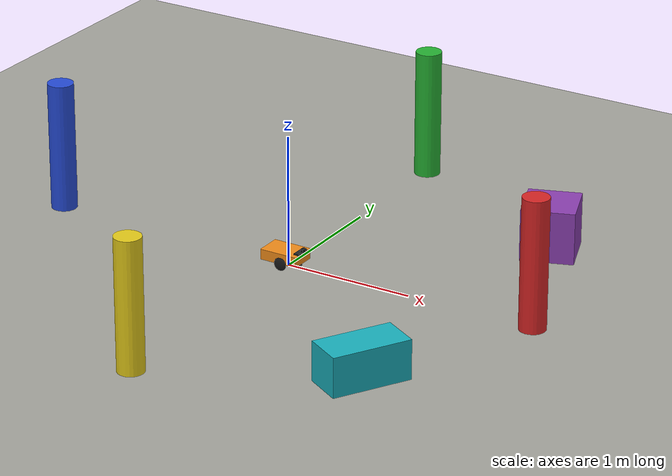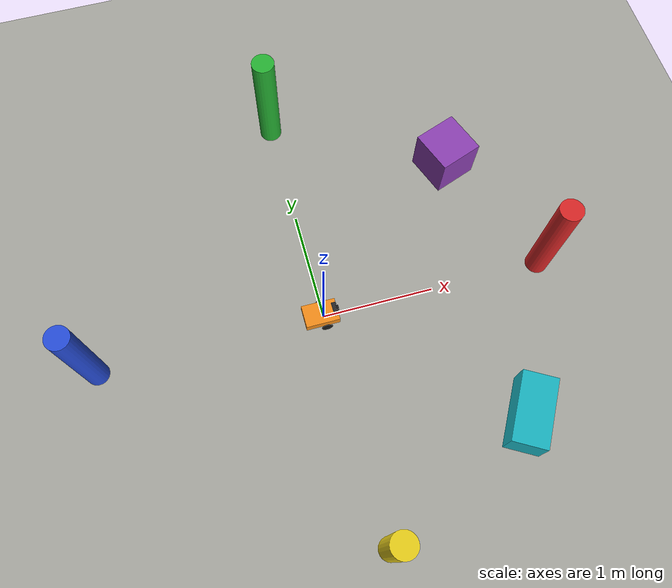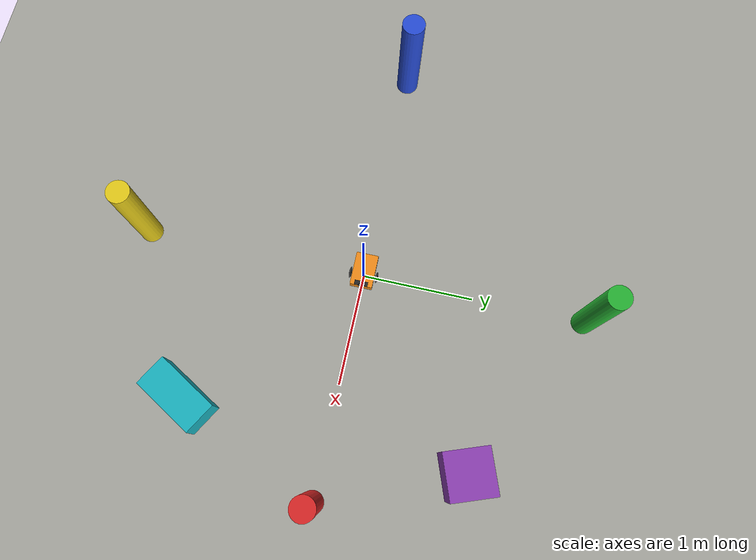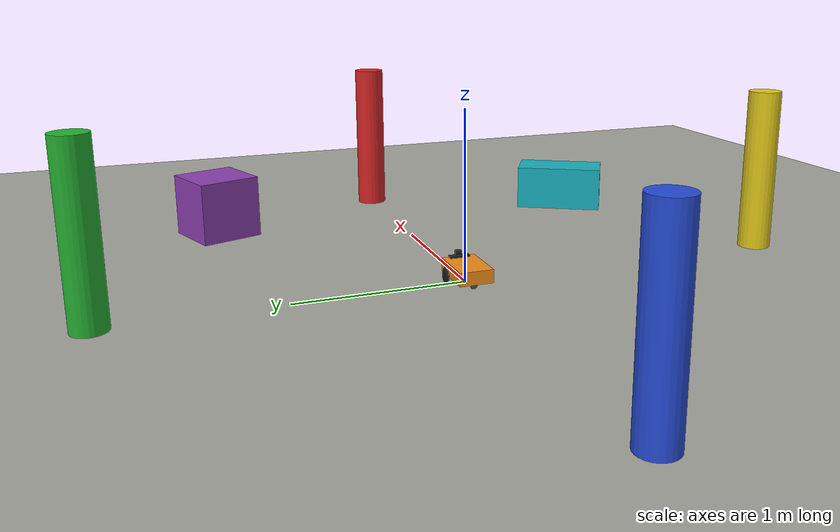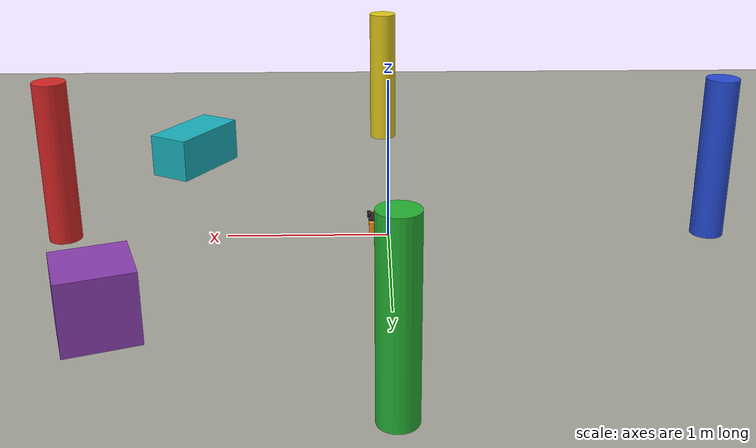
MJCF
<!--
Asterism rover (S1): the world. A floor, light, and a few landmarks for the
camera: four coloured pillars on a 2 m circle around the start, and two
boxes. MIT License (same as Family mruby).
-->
<mujoco model="asterism_rover_scene">
  <include file="rover.xml"/>

  <!-- Elliptic friction cones and a high impratio keep the wheels from
       creeping (MuJoCo's soft contacts otherwise let them slip a few %). -->
  <option timestep="0.002" integrator="implicitfast" cone="elliptic" impratio="10"/>

  <statistic center="0 0 0.3" extent="4"/>

  <visual>
    <headlight diffuse="0.5 0.5 0.5" ambient="0.25 0.25 0.25" specular="0 0 0"/>
    <rgba haze="0.15 0.25 0.35 1"/>
    <global azimuth="160" elevation="-25" offwidth="640" offheight="480"/>
    <quality shadowsize="2048"/>
  </visual>

  <asset>
    <texture type="skybox" builtin="gradient" rgb1="0.45 0.65 0.85" rgb2="0.1 0.1 0.15" width="512" height="3072"/>
    <texture type="2d" name="floor" builtin="checker" mark="edge" rgb1="0.75 0.75 0.72" rgb2="0.55 0.55 0.52"
             markrgb="0.3 0.3 0.3" width="300" height="300"/>
    <material name="floor" texture="floor" texuniform="true" texrepeat="2 2" reflectance="0.05"/>
  </asset>

  <worldbody>
    <light name="sun" pos="0 0 4" dir="-0.3 0.2 -1" directional="true" diffuse="0.7 0.7 0.7" castshadow="true"/>
    <geom name="floor" type="plane" size="0 0 0.05" material="floor" friction="1.0 0.005 0.0001"/>

    <!-- Landmarks: 1 m tall pillars, 2 m from the start -->
    <geom name="pillar_red" type="cylinder" size="0.1 0.5" pos="2 0 0.5" rgba="0.85 0.15 0.15 1"/>
    <geom name="pillar_green" type="cylinder" size="0.1 0.5" pos="0 2 0.5" rgba="0.15 0.7 0.2 1"/>
    <geom name="pillar_blue" type="cylinder" size="0.1 0.5" pos="-2 0 0.5" rgba="0.15 0.3 0.85 1"/>
    <geom name="pillar_yellow" type="cylinder" size="0.1 0.5" pos="0 -2 0.5" rgba="0.9 0.8 0.1 1"/>

    <!-- Boxes -->
    <geom name="box_purple" type="box" size="0.2 0.2 0.2" pos="1.5 1.2 0.2" euler="0 0 20" rgba="0.55 0.25 0.7 1"/>
    <geom name="box_cyan" type="box" size="0.15 0.3 0.15" pos="1.4 -1.3 0.15" euler="0 0 -30" rgba="0.1 0.7 0.75 1"/>
  </worldbody>
</mujoco>

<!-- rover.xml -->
<mujoco model="asterism_rover">
  <worldbody>
    <body name="base_link" pos="0 0 0.052">
      <!-- Ground truth: mujoco_ros2_control publishes this free joint's pose
           as nav_msgs/Odometry (odom_free_joint_name in rover.urdf). -->
      <freejoint name="floating_base_joint"/>

      <!-- Chassis: its centre (and the centre of mass) sits behind the axle,
           so the robot rests on the rear caster. -->
      <geom name="chassis" type="box" size="0.15 0.10 0.04" pos="-0.03 0 0.03"
            mass="2.0" rgba="0.95 0.55 0.10 1"/>
      <!-- Forward marker on top (cosmetic, no collision) -->
      <geom name="nose" type="box" size="0.02 0.06 0.005" pos="0.10 0 0.075"
            contype="0" conaffinity="0" mass="0" rgba="0.15 0.15 0.15 1"/>

      <!-- Rear caster: a frictionless ball (condim 1) touching the floor. -->
      <geom name="rear_caster" type="sphere" size="0.02" pos="-0.13 0 -0.03"
            condim="1" mass="0.05" rgba="0.3 0.3 0.3 1"/>
      <!-- Front stop: 5 mm above the floor, only touches when the robot
           pitches forward under hard braking. -->
      <geom name="front_stop" type="sphere" size="0.02" pos="0.09 0 -0.025"
            condim="1" mass="0.05" rgba="0.3 0.3 0.3 1"/>

      <!-- IMU (framequat + gyro + accelerometer on this site) -->
      <site name="imu_sensor" pos="0 0 0.05" size="0.01" rgba="0 1 0 0.5"/>

      <!-- Front camera, looking along +x. A MuJoCo camera looks along its
           -z axis with +y up: xyaxes gives x = -y_body, y = +z_body. -->
      <body name="camera_body" pos="0.12 0 0.09">
        <geom name="camera_box" type="box" size="0.01 0.02 0.015" contype="0" conaffinity="0"
              mass="0.02" rgba="0.1 0.1 0.1 1"/>
        <camera name="camera" mode="fixed" fovy="60" resolution="160 120"
                pos="0.011 0 0" xyaxes="0 -1 0 0 0 1"/>
      </body>

      <!-- Wheels: flat ellipsoids (a cylinder's rim contacts slipped more),
           with stiff contacts (solref) so the tyres do not creep. -->
      <body name="left_wheel_link" pos="0 0.12 0">
        <joint name="left_wheel_joint" type="hinge" axis="0 1 0" damping="0.001" armature="0.0005"/>
        <geom name="left_wheel" type="ellipsoid" size="0.05 0.05 0.0125" quat="0.7071068 0.7071068 0 0"
              mass="0.2" friction="1.2 0.005 0.0001" solref="0.004 1" solimp="0.95 0.99 0.001" rgba="0.1 0.1 0.1 1"/>
      </body>
      <body name="right_wheel_link" pos="0 -0.12 0">
        <joint name="right_wheel_joint" type="hinge" axis="0 1 0" damping="0.001" armature="0.0005"/>
        <geom name="right_wheel" type="ellipsoid" size="0.05 0.05 0.0125" quat="0.7071068 0.7071068 0 0"
              mass="0.2" friction="1.2 0.005 0.0001" solref="0.004 1" solimp="0.95 0.99 0.001" rgba="0.1 0.1 0.1 1"/>
      </body>
    </body>
  </worldbody>

  <!-- Velocity servos: ros2_control's velocity command interface maps to
       them natively (diff_drive_controller writes wheel speeds in rad/s). -->
  <actuator>
    <velocity name="left_wheel_joint" joint="left_wheel_joint" kv="5"
              forcelimited="true" forcerange="-2 2"/>
    <velocity name="right_wheel_joint" joint="right_wheel_joint" kv="5"
              forcelimited="true" forcerange="-2 2"/>
  </actuator>

  <sensor>
    <framequat name="imu_sensor_quat" objtype="site" objname="imu_sensor"/>
    <gyro name="imu_sensor_gyro" site="imu_sensor"/>
    <accelerometer name="imu_sensor_accel" site="imu_sensor"/>
  </sensor>
</mujoco>
